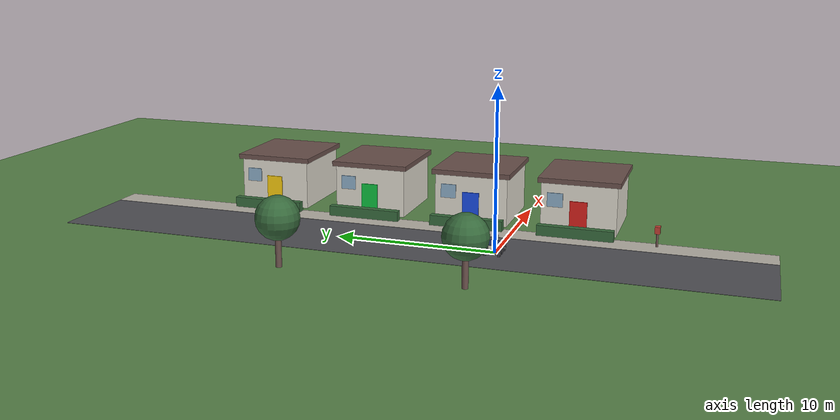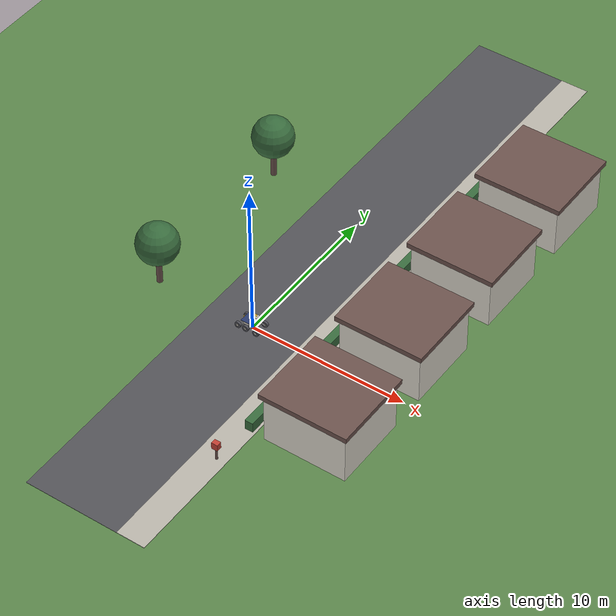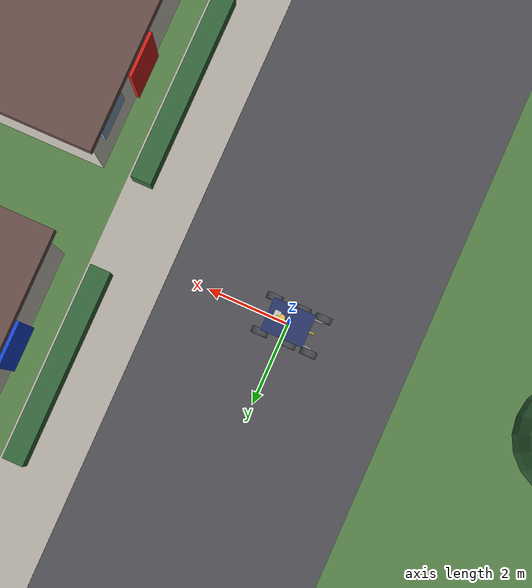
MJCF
<mujoco model="delivery">
  <include file="pyunto_r1.xml"/>

  <compiler angle="radian" autolimits="true"/>
  <option timestep="0.004" integrator="implicitfast"/>

  <visual>
    <headlight ambient="0.42 0.42 0.45" diffuse="0.55 0.55 0.55" specular="0.1 0.1 0.1"/>
    <map znear="0.02" zfar="90"/>
    <quality shadowsize="4096"/>
    <!-- Big enough for an offscreen render: the default 640x480 framebuffer refuses any
         larger image, which blocks documentation shots and any test that wants to look. -->
    <global offwidth="1600" offheight="1200"/>
  </visual>

  <asset>
    <texture name="sky" type="skybox" builtin="gradient"
             rgb1="0.53 0.68 0.86" rgb2="0.85 0.90 0.96" width="256" height="256"/>
    <texture name="road_tex" type="2d" builtin="checker" rgb1="0.34 0.34 0.36"
             rgb2="0.30 0.30 0.32" width="256" height="256"/>
    <material name="road" texture="road_tex" texrepeat="14 14" specular="0.08" shininess="0.1"/>
    <material name="grass" rgba="0.35 0.52 0.29 1" specular="0.05"/>
    <material name="pavement" rgba="0.72 0.70 0.66 1" specular="0.05"/>
    <material name="wall" rgba="0.88 0.86 0.81 1" specular="0.05"/>
    <material name="roof" rgba="0.42 0.32 0.30 1" specular="0.1"/>
    <material name="window" rgba="0.55 0.68 0.78 1" specular="0.6" shininess="0.6"/>

    <material name="door_red" rgba="0.85 0.13 0.11 1" emission="0.55" specular="0.1"/>
    <material name="door_blue" rgba="0.10 0.30 0.90 1" emission="0.55" specular="0.1"/>
    <material name="door_green" rgba="0.05 0.75 0.25 1" emission="0.55" specular="0.1"/>
    <material name="door_yellow" rgba="0.98 0.80 0.05 1" emission="0.55" specular="0.1"/>
    <material name="hedge" rgba="0.22 0.42 0.24 1" specular="0.03"/>
    <material name="postbox" rgba="0.75 0.25 0.20 1" specular="0.3"/>
  </asset>

  <worldbody>
    <light name="sun" pos="-12 -20 25" dir="0.35 0.55 -0.75" directional="true"
           diffuse="0.85 0.84 0.80" specular="0.25 0.25 0.25" castshadow="true"/>
    <light name="fill" pos="18 14 16" dir="-0.5 -0.4 -0.75" directional="true"
           diffuse="0.22 0.23 0.26"/>

    <geom name="ground" type="plane" size="45 45 0.1" material="grass"
          friction="1.0 0.02 0.001" condim="3"/>
    <!-- The road the robot travels, running north. -->
    <geom name="road" type="box" pos="0 6 0.01" size="3.0 22 0.01" material="road"
          friction="1.0 0.02 0.001" condim="3"/>
    <!-- Pavement on the house side, so the robot has an obvious place to be. -->
    <geom name="pavement" type="box" pos="3.9 6 0.02" size="0.9 22 0.02" material="pavement"/>

    <body name="house_red" pos="8.0 -4.0 0">
      <geom name="house_red_wall" type="box" pos="0 0 1.6" size="2.6 2.4 1.6" material="wall"/>
      <geom name="house_red_roof" type="box" pos="0 0 3.35" size="2.8 2.6 0.16" material="roof"/>
      <geom name="door_red" type="box" pos="-2.62 0 1.05" size="0.06 0.55 1.05" material="door_red"/>
      <geom name="house_red_w1" type="box" pos="-2.62 1.5 2.1" size="0.05 0.5 0.45" material="window"/>
      <geom name="house_red_hedge" type="box" pos="-3.6 0 0.35" size="0.25 2.4 0.35" material="hedge"/>
    </body>

    <body name="house_blue" pos="8.0 3.0 0">
      <geom name="house_blue_wall" type="box" pos="0 0 1.6" size="2.6 2.4 1.6" material="wall"/>
      <geom name="house_blue_roof" type="box" pos="0 0 3.35" size="2.8 2.6 0.16" material="roof"/>
      <geom name="door_blue" type="box" pos="-2.62 0 1.05" size="0.06 0.55 1.05" material="door_blue"/>
      <geom name="house_blue_w1" type="box" pos="-2.62 1.5 2.1" size="0.05 0.5 0.45" material="window"/>
      <geom name="house_blue_hedge" type="box" pos="-3.6 0 0.35" size="0.25 2.4 0.35" material="hedge"/>
    </body>

    <body name="house_green" pos="8.0 10.0 0">
      <geom name="house_green_wall" type="box" pos="0 0 1.6" size="2.6 2.4 1.6" material="wall"/>
      <geom name="house_green_roof" type="box" pos="0 0 3.35" size="2.8 2.6 0.16" material="roof"/>
      <geom name="door_green" type="box" pos="-2.62 0 1.05" size="0.06 0.55 1.05" material="door_green"/>
      <geom name="house_green_w1" type="box" pos="-2.62 1.5 2.1" size="0.05 0.5 0.45" material="window"/>
      <geom name="house_green_hedge" type="box" pos="-3.6 0 0.35" size="0.25 2.4 0.35" material="hedge"/>
    </body>

    <body name="house_yellow" pos="8.0 17.0 0">
      <geom name="house_yellow_wall" type="box" pos="0 0 1.6" size="2.6 2.4 1.6" material="wall"/>
      <geom name="house_yellow_roof" type="box" pos="0 0 3.35" size="2.8 2.6 0.16" material="roof"/>
      <geom name="door_yellow" type="box" pos="-2.62 0 1.05" size="0.06 0.55 1.05" material="door_yellow"/>
      <geom name="house_yellow_w1" type="box" pos="-2.62 1.5 2.1" size="0.05 0.5 0.45" material="window"/>
      <geom name="house_yellow_hedge" type="box" pos="-3.6 0 0.35" size="0.25 2.4 0.35" material="hedge"/>
    </body>

    <!-- A postbox at the near end: somewhere to send the robot back to, and a size reference. -->
    <body name="postbox" pos="4.2 -9.0 0">
      <geom name="postbox_post" type="cylinder" pos="0 0 0.5" size="0.07 0.5" material="roof"/>
      <geom name="postbox_body" type="box" pos="0 0 1.1" size="0.2 0.16 0.22" material="postbox"/>
    </body>

    <!-- Trees on the far side, so the street has depth and the camera has something to
         reject: they are green like the hedges but three metres up and off the route. -->
    <body name="tree_a" pos="-6.5 0.0 0">
      <geom name="tree_a_trunk" type="cylinder" pos="0 0 1.2" size="0.18 1.2" material="roof"/>
      <geom name="tree_a_crown" type="sphere" pos="0 0 2.9" size="1.3" material="hedge"/>
    </body>
    <body name="tree_b" pos="-6.5 11.0 0">
      <geom name="tree_b_trunk" type="cylinder" pos="0 0 1.2" size="0.18 1.2" material="roof"/>
      <geom name="tree_b_crown" type="sphere" pos="0 0 2.9" size="1.3" material="hedge"/>
    </body>
  </worldbody>

  <keyframe>
    <key name="start"
         qpos="0 -10.0 0.46   0.7071 0 0 0.7071
               0 0 0 0 0 0 0
               0 0 0 0 0 0 0"/>
    <!-- "middle" starts level with the blue door, for testing arrival without the approach. -->
    <key name="middle"
         qpos="0 2.0 0.46   0.7071 0 0 0.7071
               0 0 0 0 0 0 0
               0 0 0 0 0 0 0"/>
  </keyframe>
</mujoco>

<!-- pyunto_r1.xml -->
<mujoco model="pyunto_r1">
  <compiler angle="radian" autolimits="true"/>

  <default>
    <default class="r1">
      <!-- No rgba in the default class: it would override every material below. -->
      <geom type="box" condim="3" friction="0.9 0.05 0.01" density="400" group="1"/>
      <joint type="hinge" damping="4" armature="0.05" limited="true"/>
    </default>

    <default class="r_strut_geom">
      <geom type="capsule" contype="0" conaffinity="0" material="r_strut" group="1"/>
    </default>

    <default class="r_pivot">
      <joint type="hinge" axis="0 1 0" damping="1.5" armature="0.02" stiffness="0"
             limited="true" range="-0.7 0.7"/>
    </default>

    <default class="r_wheel">
      <geom type="cylinder" condim="4" friction="1.6 0.15 0.02" density="600"
            material="r_wheel_mat" group="1"/>
      <joint type="hinge" axis="0 1 0" damping="0.6" armature="0.03" limited="false"/>
    </default>
  </default>

  <asset>
    <material name="r_body"      rgba="0.82 0.80 0.75 1" specular="0.35" shininess="0.40"/>
    <material name="r_deck"      rgba="0.16 0.22 0.42 1" specular="0.70" shininess="0.80"/>
    <material name="r_strut"     rgba="0.55 0.56 0.58 1" specular="0.55" shininess="0.55"/>
    <material name="r_wheel_mat" rgba="0.30 0.30 0.33 1" specular="0.25"/>
    <material name="r_rim"       rgba="0.72 0.70 0.66 1" specular="0.60" shininess="0.60"/>
    <material name="r_mast"      rgba="0.62 0.62 0.64 1" specular="0.55"/>
    <material name="r_lens"      rgba="0.12 0.30 0.45 1" specular="0.90" shininess="0.95"/>
    <material name="r_gold"      rgba="0.84 0.69 0.24 1" specular="0.85" shininess="0.85"/>
    <material name="r_hazard"    rgba="0.92 0.34 0.18 1" specular="0.30"/>
  </asset>

  <worldbody>
    <body name="chassis" pos="0 0 0.46" childclass="r1">
      <freejoint name="root"/>
      <inertial pos="0 0 -0.05" mass="55.0" diaginertia="6.0 9.0 11.0"/>
      <geom name="chassis_g" type="box" size="0.42 0.30 0.13" material="r_body"/>
      <!-- Solar deck: the big flat surface on top, and the rover's most recognisable feature
           from above. Dark blue, which is nothing like the grey of everything else here. -->
      <geom name="deck_g" type="box" size="0.52 0.40 0.018" pos="0 0 0.148" material="r_deck"/>
      <!-- Radiator and a hazard stripe, so the body is not a featureless slab in a photo. -->
      <geom name="rad_g" type="box" size="0.20 0.02 0.09" pos="-0.44 0 0.02"
            material="r_gold"/>
      <geom name="stripe_g" type="box" size="0.42 0.012 0.022" pos="0 -0.302 0.09"
            material="r_hazard"/>

      <body name="mast" pos="0.30 0 0.16">
        <inertial pos="0 0 0.14" mass="3.0" diaginertia="0.04 0.04 0.01"/>
        <geom name="mast_g" type="cylinder" size="0.035 0.15" pos="0 0 0.15"
              material="r_mast"/>
        <geom name="head_g" type="box" size="0.075 0.13 0.055" pos="0 0 0.345"
              material="r_body"/>
        <geom name="lens_l" type="cylinder" size="0.030 0.012" pos="0.078 0.070 0.345"
              euler="0 1.5708 0" material="r_lens"/>
        <geom name="lens_r" type="cylinder" size="0.030 0.012" pos="0.078 -0.070 0.345"
              euler="0 1.5708 0" material="r_lens"/>
        <!-- High-gain antenna dish, angled up at Earth. -->
        <geom name="antenna" type="cylinder" size="0.11 0.012" pos="-0.10 0 0.40"
              euler="0.6 0 0" material="r_gold"/>

        <camera name="head_cam" pos="0.085 0 0.345" xyaxes="0 -1 0 0 0 1" fovy="75"/>
        <site name="head_cam_site" pos="0.085 0 0.345" size="0.01" rgba="1 0 0 0.5"/>
        <camera name="look_left" pos="0.06 0.07 0.345" xyaxes="0.866 -0.5 0 0 0 1" fovy="90"/>
        <camera name="look_right" pos="0.06 -0.07 0.345" xyaxes="-0.866 -0.5 0 0 0 1" fovy="90"/>
        <camera name="hazard_cam" pos="0.075 0 0.30" xyaxes="0 -1 0 0.643 0 0.766" fovy="85"/>
      </body>

      <body name="rocker_l" pos="0 0.33 -0.06">
        <joint name="rocker_l" class="r_pivot"/>
        <inertial pos="0 0 -0.06" mass="6.0" diaginertia="0.10 0.30 0.30"/>
        <!-- Forward arm, out to the front wheel. -->
        <geom name="rock_l_f" class="r_strut_geom" fromto="0 0 0 0.52 0 -0.20" size="0.035"/>
        <!-- Rearward arm, back to the bogie pivot. -->
        <geom name="rock_l_b" class="r_strut_geom" fromto="0 0 0 -0.30 0 -0.16" size="0.035"/>

        <body name="steer_lf" pos="0.52 0.10 -0.20">
          <joint name="steer_lf" type="hinge" axis="0 0 1" range="-0.8 0.8" damping="3" armature="0.02"/>
          <geom name="steer_lf_g" type="cylinder" size="0.05 0.03" material="r_strut" contype="0" conaffinity="0" density="1"/>
          <body name="wheel_lf" pos="0 0 0">
          <joint name="drive_lf" class="r_wheel"/>
          <inertial pos="0 0 0" mass="4.0" diaginertia="0.05 0.09 0.05"/>
          <geom name="wheel_lf_g" size="0.20 0.075" euler="1.5708 0 0" class="r_wheel"/>
          <geom name="rim_lf" type="cylinder" size="0.085 0.078" euler="1.5708 0 0"
                material="r_rim" contype="0" conaffinity="0" density="1"/>
        </body>
          </body>

        <body name="bogie_l" pos="-0.30 0 -0.16">
          <joint name="bogie_l" class="r_pivot"/>
          <inertial pos="-0.14 0 -0.04" mass="3.0" diaginertia="0.03 0.10 0.10"/>
          <geom name="bog_l" class="r_strut_geom" fromto="0.12 0 0.02 -0.40 0 -0.02" size="0.030"/>

          <body name="wheel_lm" pos="0.12 0.10 -0.04">
            <joint name="drive_lm" class="r_wheel"/>
            <inertial pos="0 0 0" mass="4.0" diaginertia="0.05 0.09 0.05"/>
            <geom name="wheel_lm_g" size="0.20 0.075" euler="1.5708 0 0" class="r_wheel"/>
            <geom name="rim_lm" type="cylinder" size="0.085 0.078" euler="1.5708 0 0"
                  material="r_rim" contype="0" conaffinity="0" density="1"/>
          </body>
          <body name="steer_lr" pos="-0.40 0.10 -0.04">
          <joint name="steer_lr" type="hinge" axis="0 0 1" range="-0.8 0.8" damping="3" armature="0.02"/>
          <geom name="steer_lr_g" type="cylinder" size="0.05 0.03" material="r_strut" contype="0" conaffinity="0" density="1"/>
          <body name="wheel_lr" pos="0 0 0">
            <joint name="drive_lr" class="r_wheel"/>
            <inertial pos="0 0 0" mass="4.0" diaginertia="0.05 0.09 0.05"/>
            <geom name="wheel_lr_g" size="0.20 0.075" euler="1.5708 0 0" class="r_wheel"/>
            <geom name="rim_lr" type="cylinder" size="0.085 0.078" euler="1.5708 0 0"
                  material="r_rim" contype="0" conaffinity="0" density="1"/>
          </body>
          </body>
        </body>
      </body>

      <!-- ======================= RIGHT ROCKER-BOGIE ======================= -->
      <body name="rocker_r" pos="0 -0.33 -0.06">
        <joint name="rocker_r" class="r_pivot"/>
        <inertial pos="0 0 -0.06" mass="6.0" diaginertia="0.10 0.30 0.30"/>
        <geom name="rock_r_f" class="r_strut_geom" fromto="0 0 0 0.52 0 -0.20" size="0.035"/>
        <geom name="rock_r_b" class="r_strut_geom" fromto="0 0 0 -0.30 0 -0.16" size="0.035"/>

        <body name="steer_rf" pos="0.52 -0.10 -0.20">
          <joint name="steer_rf" type="hinge" axis="0 0 1" range="-0.8 0.8" damping="3" armature="0.02"/>
          <geom name="steer_rf_g" type="cylinder" size="0.05 0.03" material="r_strut" contype="0" conaffinity="0" density="1"/>
          <body name="wheel_rf" pos="0 0 0">
          <joint name="drive_rf" class="r_wheel"/>
          <inertial pos="0 0 0" mass="4.0" diaginertia="0.05 0.09 0.05"/>
          <geom name="wheel_rf_g" size="0.20 0.075" euler="1.5708 0 0" class="r_wheel"/>
          <geom name="rim_rf" type="cylinder" size="0.085 0.078" euler="1.5708 0 0"
                material="r_rim" contype="0" conaffinity="0" density="1"/>
        </body>
          </body>

        <body name="bogie_r" pos="-0.30 0 -0.16">
          <joint name="bogie_r" class="r_pivot"/>
          <inertial pos="-0.14 0 -0.04" mass="3.0" diaginertia="0.03 0.10 0.10"/>
          <geom name="bog_r" class="r_strut_geom" fromto="0.12 0 0.02 -0.40 0 -0.02" size="0.030"/>

          <body name="wheel_rm" pos="0.12 -0.10 -0.04">
            <joint name="drive_rm" class="r_wheel"/>
            <inertial pos="0 0 0" mass="4.0" diaginertia="0.05 0.09 0.05"/>
            <geom name="wheel_rm_g" size="0.20 0.075" euler="1.5708 0 0" class="r_wheel"/>
            <geom name="rim_rm" type="cylinder" size="0.085 0.078" euler="1.5708 0 0"
                  material="r_rim" contype="0" conaffinity="0" density="1"/>
          </body>
          <body name="steer_rr" pos="-0.40 -0.10 -0.04">
          <joint name="steer_rr" type="hinge" axis="0 0 1" range="-0.8 0.8" damping="3" armature="0.02"/>
          <geom name="steer_rr_g" type="cylinder" size="0.05 0.03" material="r_strut" contype="0" conaffinity="0" density="1"/>
          <body name="wheel_rr" pos="0 0 0">
            <joint name="drive_rr" class="r_wheel"/>
            <inertial pos="0 0 0" mass="4.0" diaginertia="0.05 0.09 0.05"/>
            <geom name="wheel_rr_g" size="0.20 0.075" euler="1.5708 0 0" class="r_wheel"/>
            <geom name="rim_rr" type="cylinder" size="0.085 0.078" euler="1.5708 0 0"
                  material="r_rim" contype="0" conaffinity="0" density="1"/>
          </body>
          </body>
        </body>
      </body>
    </body>
  </worldbody>

  <equality>
    <joint name="differential" joint1="rocker_l" joint2="rocker_r" polycoef="0 -1 0 0 0"/>
  </equality>

  <contact>
    <!-- Neighbouring links always touch; excluding them avoids constant contact churn. -->
    <exclude body1="chassis" body2="rocker_l"/>
    <exclude body1="chassis" body2="rocker_r"/>
    <exclude body1="chassis" body2="mast"/>
    <exclude body1="rocker_l" body2="bogie_l"/>
    <exclude body1="rocker_r" body2="bogie_r"/>
  </contact>

  <actuator>
    <velocity name="drive_lf" joint="drive_lf" kv="60" ctrlrange="-14 14" forcerange="-45 45"/>
    <velocity name="drive_lm" joint="drive_lm" kv="60" ctrlrange="-14 14" forcerange="-45 45"/>
    <velocity name="drive_lr" joint="drive_lr" kv="60" ctrlrange="-14 14" forcerange="-45 45"/>
    <velocity name="drive_rf" joint="drive_rf" kv="60" ctrlrange="-14 14" forcerange="-45 45"/>
    <velocity name="drive_rm" joint="drive_rm" kv="60" ctrlrange="-14 14" forcerange="-45 45"/>
    <velocity name="drive_rr" joint="drive_rr" kv="60" ctrlrange="-14 14" forcerange="-45 45"/>

    <position name="steer_lf" joint="steer_lf" kp="220" kv="25" ctrlrange="-0.8 0.8"
              forcerange="-60 60"/>
    <position name="steer_rf" joint="steer_rf" kp="220" kv="25" ctrlrange="-0.8 0.8"
              forcerange="-60 60"/>
    <position name="steer_lr" joint="steer_lr" kp="220" kv="25" ctrlrange="-0.8 0.8"
              forcerange="-60 60"/>
    <position name="steer_rr" joint="steer_rr" kp="220" kv="25" ctrlrange="-0.8 0.8"
              forcerange="-60 60"/>
  </actuator>

  <keyframe>
    <key name="stand"
         qpos="0 0 0.46  1 0 0 0
               0 0 0 0 0 0 0
               0 0 0 0 0 0 0"/>
  </keyframe>
</mujoco>
